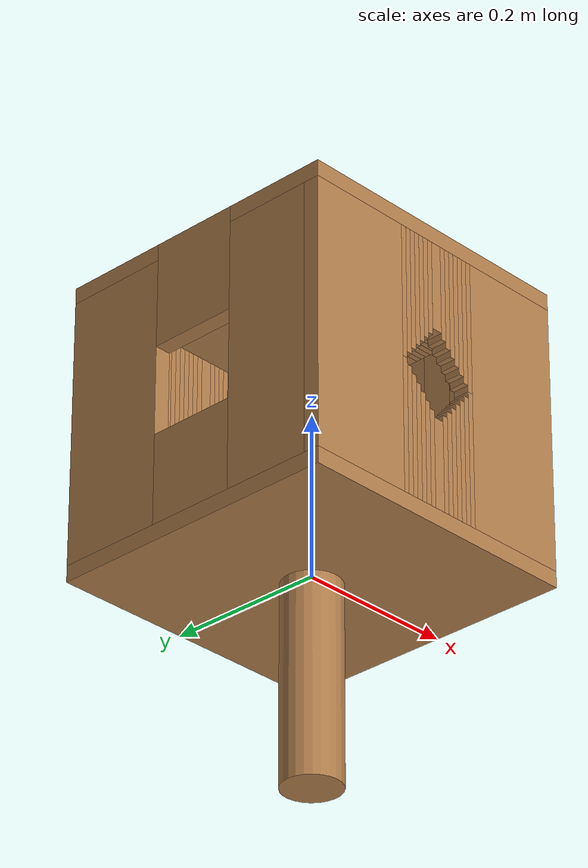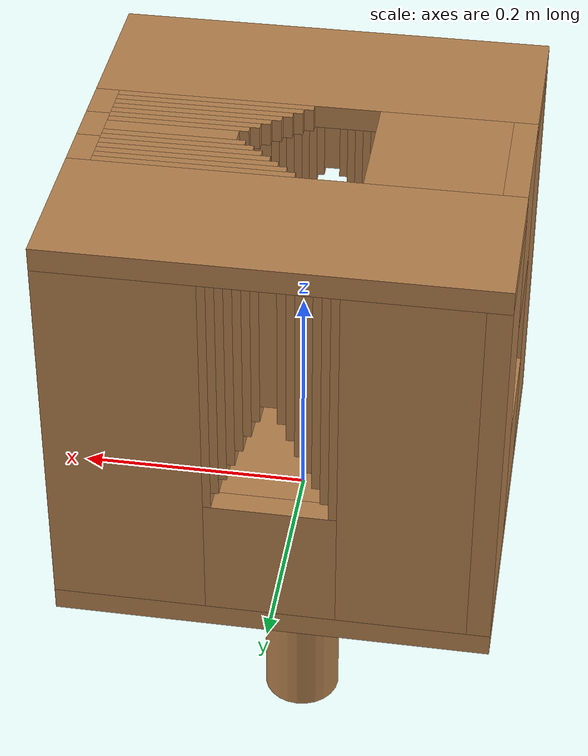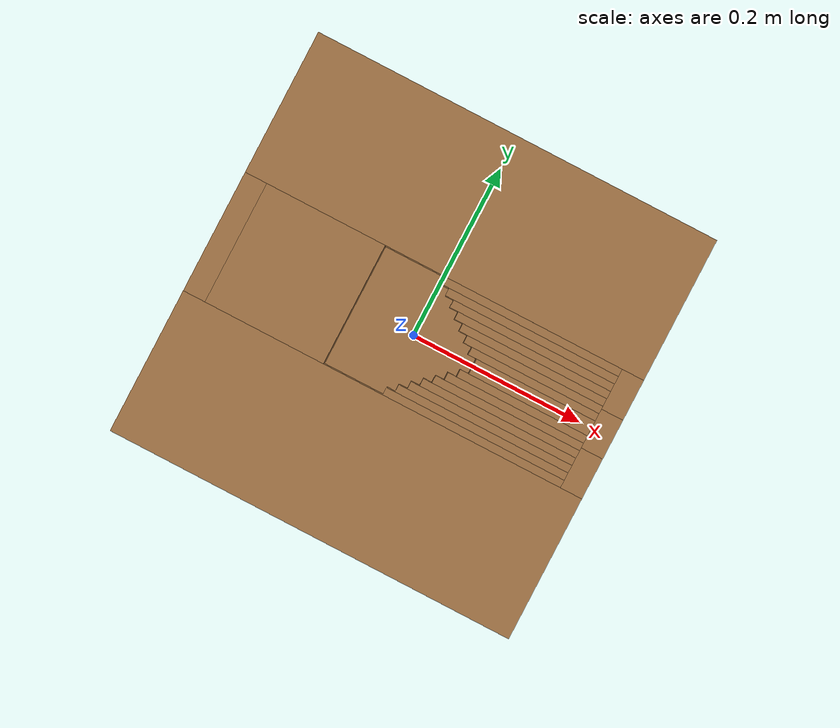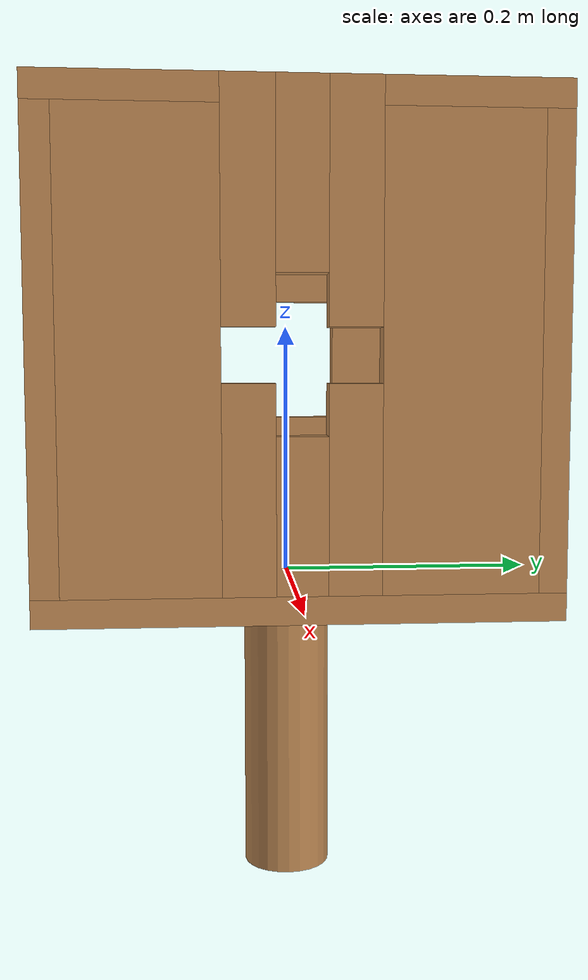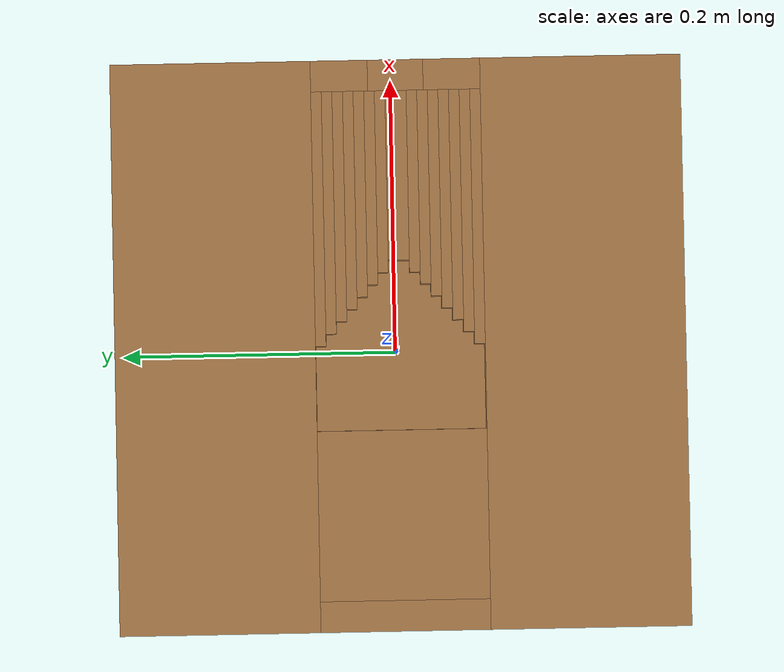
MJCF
<mujoco model="base">
  <asset>
    <texture file="../textures/red-wood.png" type="cube" name="red-wood" />
    <material name="plate_mat" texture="red-wood" texrepeat="3 3" specular="0.4" shininess="0.1" />
  </asset>
  <worldbody>
    <body>
      <body name="object">

        <!-- BASE -->
        <body name="base">
        <geom pos="0 0 0" size="0.185 0.185 0.01" type="box" group="0" material="plate_mat"/>
        </body>

         <!-- HANDLE -->
        <body name="handle">
        <geom pos="0 0 -0.13" size="0.035 0.12" type="cylinder" group="0" material="plate_mat" />
        </body>

        <!-- TOP -->

        <body name="pentagon">

        <geom pos="0 0.12 0.35" size="0.185 0.065 0.01" type="box" group="0" material="plate_mat"/>
        <geom pos="0 -0.12 0.35" size="0.185 0.065 0.01" type="box" group="0" material="plate_mat"/>
        <geom pos="-0.11 0 0.35" size="0.055 0.055 0.01" type="box" group="0" material="plate_mat" />

        <!-- middle of  top triangle -->
        <geom pos="0.11 0 0.35" size="0.055 0.006875 0.01" type="box" group="0" material="plate_mat" />

        <!-- left of top triangle -->
        <geom pos="0.1060714275 0.0103125 0.35" size="0.0589285725 0.0034375 0.01" type="box" group="0" material="plate_mat" />
        <geom pos="0.102142855 0.0171875 0.35" size="0.062857145 0.0034375 0.01" type="box" group="0" material="plate_mat" />
        <geom pos="0.0982142825 0.0240625 0.35" size="0.0667857175 0.0034375 0.01" type="box" group="0" material="plate_mat" />
        <geom pos="0.09428571 0.0309375 0.35" size="0.07071429 0.0034375 0.01" type="box" group="0" material="plate_mat" />
        <geom pos="0.0903571375 0.0378125 0.35" size="0.0746428625 0.0034375 0.01" type="box" group="0" material="plate_mat" />
        <geom pos="0.086428565 0.0446875 0.35" size="0.078571435 0.0034375 0.01" type="box" group="0" material="plate_mat" />
        <geom pos="0.0824999925 0.0515625 0.35" size="0.0825000075 0.0034375 0.01" type="box" group="0" material="plate_mat" />

        <!-- right of top triangle -->
        <geom pos="0.1060714275 -0.0103125 0.35" size="0.0589285725 0.0034375 0.01" type="box" group="0" material="plate_mat" />
        <geom pos="0.102142855 -0.0171875 0.35" size="0.062857145 0.0034375 0.01" type="box" group="0" material="plate_mat" />
        <geom pos="0.0982142825 -0.0240625 0.35" size="0.0667857175 0.0034375 0.01" type="box" group="0" material="plate_mat" />
        <geom pos="0.09428571 -0.0309375 0.35" size="0.07071429 0.0034375 0.01" type="box" group="0" material="plate_mat" />
        <geom pos="0.0903571375 -0.0378125 0.35" size="0.0746428625 0.0034375 0.01" type="box" group="0" material="plate_mat" />
        <geom pos="0.086428565 -0.0446875 0.35" size="0.078571435 0.0034375 0.01" type="box" group="0" material="plate_mat" />
        <geom pos="0.0824999925 -0.0515625 0.35" size="0.0825000075 0.0034375 0.01" type="box" group="0" material="plate_mat" />

        </body>

        <!-- FRONT -->

        <body name="diamond">

        <geom pos="0.12 -0.175 0.175" size="0.065 0.01 0.165" type="box" group="0" material="plate_mat"/>
        <geom pos="-0.12 -0.175 0.175" size="0.065 0.01 0.165" type="box" group="0" material="plate_mat"/>

        <!-- middle of  top triangle -->
        <geom pos="0 -0.175 0.285" size="0.006875 0.01 0.055" type="box" group="0" material="plate_mat" />

        <!-- left of top triangle -->
        <geom pos="-0.0103125 -0.175 0.2810714275" size="0.0034375 0.01 0.0589285725" type="box" group="0" material="plate_mat" />
        <geom pos="-0.0171875 -0.175 0.277142855" size="0.0034375 0.01 0.062857145" type="box" group="0" material="plate_mat" />
        <geom pos="-0.0240625 -0.175 0.2732142825" size="0.0034375 0.01 0.0667857175" type="box" group="0" material="plate_mat" />
        <geom pos="-0.0309375 -0.175 0.26928571" size="0.0034375 0.01 0.07071429" type="box" group="0" material="plate_mat" />
        <geom pos="-0.0378125 -0.175 0.2653571375" size="0.0034375 0.01 0.0746428625" type="box" group="0" material="plate_mat" />
        <geom pos="-0.0446875 -0.175 0.261428565" size="0.0034375 0.01 0.078571435" type="box" group="0" material="plate_mat" />
        <geom pos="-0.0515625 -0.175 0.2574999925" size="0.0034375 0.01 0.0825000075" type="box" group="0" material="plate_mat" />

        <!-- right of top triangle -->
        <geom pos="0.0103125 -0.175 0.2810714275" size="0.0034375 0.01 0.0589285725" type="box" group="0" material="plate_mat" />
        <geom pos="0.0171875 -0.175 0.277142855" size="0.0034375 0.01 0.062857145" type="box" group="0" material="plate_mat" />
        <geom pos="0.0240625 -0.175 0.2732142825" size="0.0034375 0.01 0.0667857175" type="box" group="0" material="plate_mat" />
        <geom pos="0.0309375 -0.175 0.26928571" size="0.0034375 0.01 0.07071429" type="box" group="0" material="plate_mat" />
        <geom pos="0.0378125 -0.175 0.2653571375" size="0.0034375 0.01 0.0746428625" type="box" group="0" material="plate_mat" />
        <geom pos="0.0446875 -0.175 0.261428565" size="0.0034375 0.01 0.078571435" type="box" group="0" material="plate_mat" />
        <geom pos="0.0515625 -0.175 0.2574999925" size="0.0034375 0.01 0.0825000075" type="box" group="0" material="plate_mat" />

        <!-- middle of bottom triangle -->
        <geom pos="0 -0.175 0.065" size="0.006875 0.01 0.055" type="box" group="0" material="plate_mat" />

        <!-- left of bottom triangle -->
        <geom pos="-0.0103125 -0.175 0.0689285725" size="0.0034375 0.01 0.0589285725" type="box" group="0" material="plate_mat" />
        <geom pos="-0.0171875 -0.175 0.072857145" size="0.0034375 0.01 0.062857145" type="box" group="0" material="plate_mat" />
        <geom pos="-0.0240625 -0.175 0.0767857175" size="0.0034375 0.01 0.0667857175" type="box" group="0" material="plate_mat" />
        <geom pos="-0.0309375 -0.175 0.08071429" size="0.0034375 0.01 0.07071429" type="box" group="0" material="plate_mat" />
        <geom pos="-0.0378125 -0.175 0.0846428625" size="0.0034375 0.01 0.0746428625" type="box" group="0" material="plate_mat" />
        <geom pos="-0.0446875 -0.175 0.088571435" size="0.0034375 0.01 0.078571435" type="box" group="0" material="plate_mat" />
        <geom pos="-0.0515625 -0.175 0.0925000075" size="0.0034375 0.01 0.0825000075" type="box" group="0" material="plate_mat" />

        <!-- right of bottom triangle -->

        <geom pos="0.0103125 -0.175 0.0689285725" size="0.0034375 0.01 0.0589285725" type="box" group="0" material="plate_mat" />
        <geom pos="0.0171875 -0.175 0.072857145" size="0.0034375 0.01 0.062857145" type="box" group="0" material="plate_mat" />
        <geom pos="0.0240625 -0.175 0.0767857175" size="0.0034375 0.01 0.0667857175" type="box" group="0" material="plate_mat" />
        <geom pos="0.0309375 -0.175 0.08071429" size="0.0034375 0.01 0.07071429" type="box" group="0" material="plate_mat" />
        <geom pos="0.0378125 -0.175 0.0846428625" size="0.0034375 0.01 0.0746428625" type="box" group="0" material="plate_mat" />
        <geom pos="0.0446875 -0.175 0.088571435" size="0.0034375 0.01 0.078571435" type="box" group="0" material="plate_mat" />
        <geom pos="0.0515625 -0.175 0.0925000075" size="0.0034375 0.01 0.0825000075" type="box" group="0" material="plate_mat" />

        </body>

        <!-- BACK -->

        <body name="triangle">

        <geom pos="0.12 0.175 0.175" size="0.065 0.01 0.165" type="box" group="0" material="plate_mat"/>
        <geom pos="-0.11 0.175 0.175" size="0.055 0.01 0.165" type="box" group="0" material="plate_mat"/>
        <geom pos="0 0.175 0.065" size="0.055 0.01 0.055" type="box" group="0" material="plate_mat" />

        <!-- middle of triangle -->
        <geom pos="0 0.175 0.285" size="0.006875 0.01 0.055" type="box" group="0" material="plate_mat" />

        <!-- left of triangle -->
        <geom pos="0.0103125 0.175 0.277142855" size="0.0034375 0.01 0.062857145" type="box" group="0" material="plate_mat" />
        <geom pos="0.0171875 0.175 0.26928571" size="0.0034375 0.01 0.07071429" type="box" group="0" material="plate_mat" />
        <geom pos="0.0240625 0.175 0.261428565" size="0.0034375 0.01 0.078571435" type="box" group="0" material="plate_mat" />
        <geom pos="0.0309375 0.175 0.25357142" size="0.0034375 0.01 0.08642858" type="box" group="0" material="plate_mat" />
        <geom pos="0.0378125 0.175 0.245714275" size="0.0034375 0.01 0.094285725" type="box" group="0" material="plate_mat" />
        <geom pos="0.0446875 0.175 0.23785713" size="0.0034375 0.01 0.10214287" type="box" group="0" material="plate_mat" />
        <geom pos="0.0515625 0.175 0.229999985" size="0.0034375 0.01 0.110000015" type="box" group="0" material="plate_mat" />

        <!-- right of triangle -->
        <geom pos="-0.0103125 0.175 0.277142855" size="0.0034375 0.01 0.062857145" type="box" group="0" material="plate_mat" />
        <geom pos="-0.0171875 0.175 0.26928571" size="0.0034375 0.01 0.07071429" type="box" group="0" material="plate_mat" />
        <geom pos="-0.0240625 0.175 0.261428565" size="0.0034375 0.01 0.078571435" type="box" group="0" material="plate_mat" />
        <geom pos="-0.0309375 0.175 0.25357142" size="0.0034375 0.01 0.08642858" type="box" group="0" material="plate_mat" />
        <geom pos="-0.0378125 0.175 0.245714275" size="0.0034375 0.01 0.094285725" type="box" group="0" material="plate_mat" />
        <geom pos="-0.0446875 0.175 0.23785713" size="0.0034375 0.01 0.10214287" type="box" group="0" material="plate_mat" />
        <geom pos="-0.0515625 0.175 0.229999985" size="0.0034375 0.01 0.110000015" type="box" group="0" material="plate_mat" />

        </body>

        <!-- LEFT -->

        <body name="square">

        <geom pos="-0.175 0.12 0.175" size="0.01 0.065 0.165" type="box" group="0" material="plate_mat" />
        <geom pos="-0.175 -0.11 0.175" size="0.01 0.055 0.165" type="box" group="0" material="plate_mat" />
        <geom pos="-0.175 0 0.295" size="0.01 0.055 0.065" type="box" group="0" material="plate_mat" />
        <geom pos="-0.175 0 0.065" size="0.01 0.055 0.055" type="box" group="0" material="plate_mat" />

        </body>

        <!-- RIGHT -->

        <body name="cross">

        <geom pos="0.175 -0.11 0.175" size="0.01 0.055 0.165" type="box" group="0" material="plate_mat" />
        <geom pos="0.175 0.11 0.175" size="0.01 0.055 0.165" type="box" group="0" material="plate_mat" />

        <geom pos="0.175 0 0.295" size="0.01 0.018 0.065" type="box" group="0" material="plate_mat" />
        <geom pos="0.175 -0.0365 0.277" size="0.01 0.0185 0.083" type="box" group="0" material="plate_mat" />
        <geom pos="0.175 0.0365 0.277" size="0.01 0.0185 0.083" type="box" group="0" material="plate_mat" />

        <geom pos="0.175 0 0.065" size="0.01 0.018 0.055" type="box" group="0" material="plate_mat" />
        <geom pos="0.175 -0.0365 0.083" size="0.01 0.0185 0.073" type="box" group="0" material="plate_mat" />
        <geom pos="0.175 0.0365 0.083" size="0.01 0.0185 0.073" type="box" group="0" material="plate_mat" />

        </body>

      </body>
      <site rgba="0 0 0 0" size="0.005" pos="0 0 -0.02" name="bottom_site"/>
      <site rgba="0 0 0 0" size="0.005" pos="0 0 0.02" name="top_site"/>
      <site rgba="0 0 0 0" size="0.005" pos="0.25 0.25 0.1" name="horizontal_radius_site"/>
    </body>
  </worldbody>
</mujoco>
